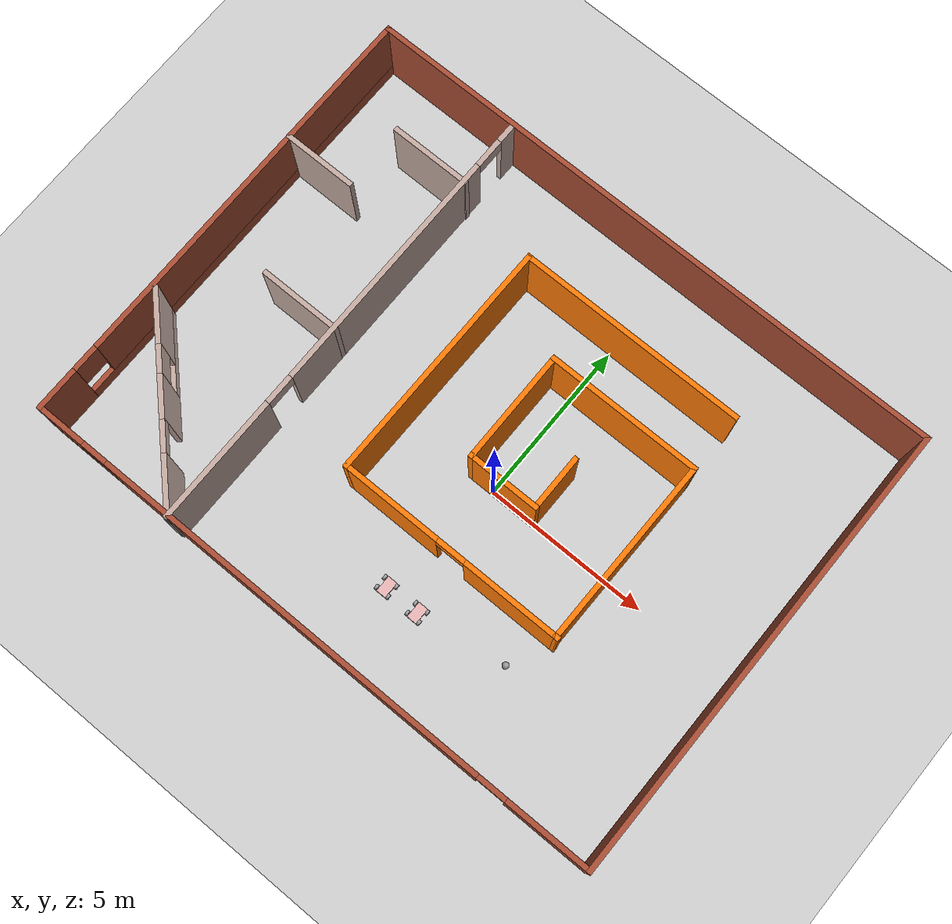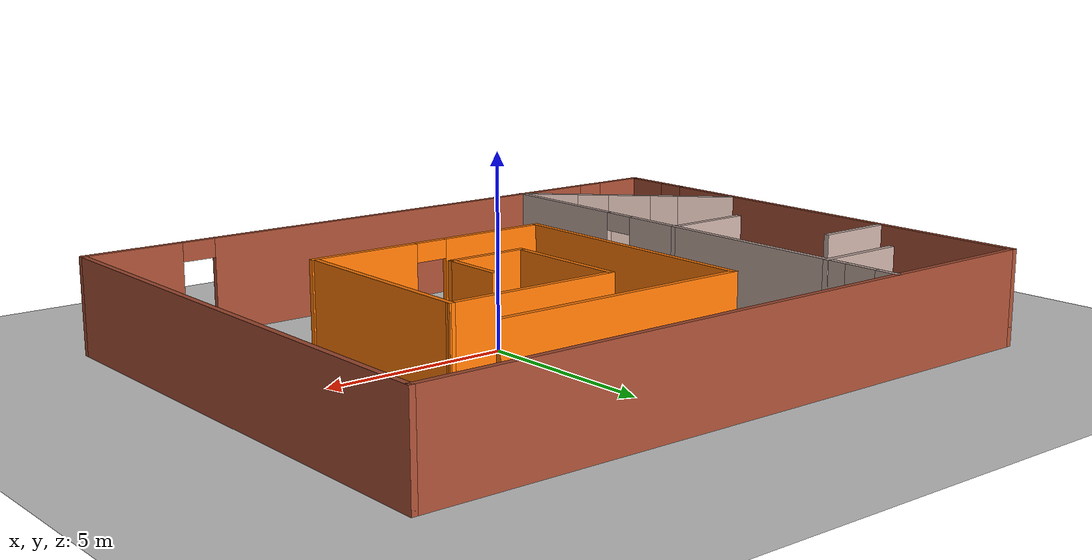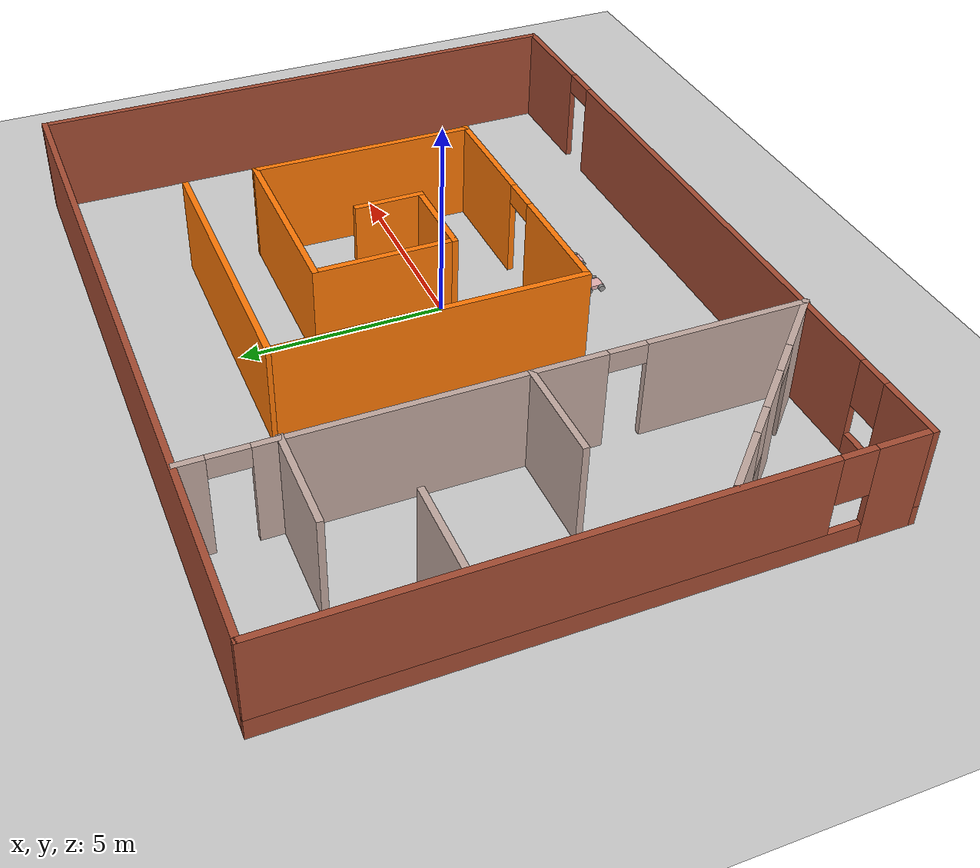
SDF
<sdf version="1.6">
 <world name="default">
  <plugin name="hello" filename="libhello.so"/>
  <light name="sun" type="directional">
   <pose>0 0 10 0 -0 0</pose>
   <diffuse>0.8 0.8 0.8 1</diffuse>
   <specular>0.2 0.2 0.2 1</specular>
   <attenuation>
    <range>1000</range>
    <constant>0.9</constant>
    <linear>0.01</linear>
    <quadratic>0.001</quadratic>
   </attenuation>
   <direction>-0.5 0.1 -0.9</direction>
  </light>
  <model name="ground_plane">
   <static>1</static>
   <link name="link">
    <collision name="collision">
     <geometry><plane><normal>0 0 1</normal><size>100 100</size></plane></geometry>
     <surface><friction><ode><mu>100</mu><mu2>50</mu2></ode></friction></surface>
    </collision>
    <visual name="visual">
     <cast_shadows>0</cast_shadows>
     <geometry><plane><normal>0 0 1</normal><size>100 100</size></plane></geometry>
     <material>
      <script><uri>file://media/materials/scripts/gazebo.material</uri><name>Gazebo/Grey</name></script>
     </material>
    </visual>
   </link>
  </model>
  <gravity>0 0 -9.8</gravity>
  <magnetic_field>6e-06 2.3e-05 -4.2e-05</magnetic_field>
  <atmosphere type="adiabatic"/>
  <physics name="default_physics" default="0" type="ode">
   <max_step_size>0.001</max_step_size>
   <real_time_factor>1</real_time_factor>
   <real_time_update_rate>1000</real_time_update_rate>
  </physics>
  <scene><ambient>0.4 0.4 0.4 1</ambient><background>0.7 0.7 0.7 1</background><shadows>1</shadows></scene>
  <spherical_coordinates>
   <surface_model>EARTH_WGS84</surface_model>
   <latitude_deg>0</latitude_deg>
   <longitude_deg>0</longitude_deg>
   <elevation>0</elevation>
   <heading_deg>0</heading_deg>
  </spherical_coordinates>
  <model name="SmartCart">
   <link name="link_0">
    <pose>-0.007382 0.000764 -2e-06 0 -0 0</pose>
    <inertial>
     <mass>0.4</mass>
     <inertia>
      <ixx>0.166667</ixx>
      <ixy>0</ixy>
      <ixz>0</ixz>
      <iyy>0.166667</iyy>
      <iyz>0</iyz>
      <izz>0.166667</izz>
     </inertia>
    </inertial>
    <visual name="visual">
     <geometry><box><size>0.3 0.5 0.1</size></box></geometry>
     <material>
      <lighting>1</lighting>
      <script><uri>file://media/materials/scripts/gazebo.material</uri><name>Gazebo/Grey</name></script>
      <shader type="pixel"><normal_map>__default__</normal_map></shader>
      <ambient>0.9 0.3 0.3 1</ambient>
      <diffuse>0.9 0.7 0.7 1</diffuse>
      <specular>0.01 0.01 0.01 1</specular>
      <emissive>0 0 0 1</emissive>
     </material>
    </visual>
    <collision name="collision">
     <geometry><box><size>0.3 0.5 0.1</size></box></geometry>
     <surface>
      <friction>
       <ode><mu>1</mu><mu2>1</mu2><fdir1>0 0 0</fdir1><slip1>0</slip1><slip2>0</slip2></ode>
       <torsional>
        <coefficient>1</coefficient>
        <patch_radius>0</patch_radius>
        <surface_radius>0</surface_radius>
        <use_patch_radius>1</use_patch_radius>
        <ode><slip>0</slip></ode>
       </torsional>
      </friction>
      <bounce><restitution_coefficient>0</restitution_coefficient><threshold>1e+06</threshold></bounce>
      <contact>
       <collide_without_contact>0</collide_without_contact>
       <collide_without_contact_bitmask>1</collide_without_contact_bitmask>
       <collide_bitmask>1</collide_bitmask>
       <ode>
        <soft_cfm>0</soft_cfm>
        <soft_erp>0.2</soft_erp>
        <kp>1e+13</kp>
        <kd>1</kd>
        <max_vel>0.01</max_vel>
        <min_depth>0</min_depth>
       </ode>
       <bullet>
        <split_impulse>1</split_impulse>
        <split_impulse_penetration_threshold>-0.01</split_impulse_penetration_threshold>
        <soft_cfm>0</soft_cfm>
        <soft_erp>0.2</soft_erp>
        <kp>1e+13</kp>
        <kd>1</kd>
       </bullet>
      </contact>
     </surface>
    </collision>
   </link>
   <link name="link_1">
    <pose>-0.217826 -0.169236 -0 -3.14159 1.57079 -3.14159</pose>
    <inertial>
     <mass>0.1</mass>
     <inertia><ixx>0.145833</ixx><ixy>0</ixy><ixz>0</ixz><iyy>0.145833</iyy><iyz>0</iyz><izz>0.125</izz></inertia>
    </inertial>
    <visual name="visual">
     <geometry><cylinder><radius>0.08</radius><length>0.08</length></cylinder></geometry>
     <material>
      <lighting>1</lighting>
      <script><uri>file://media/materials/scripts/gazebo.material</uri><name>Gazebo/Grey</name></script>
      <shader type="pixel"><normal_map>__default__</normal_map></shader>
      <ambient>0.3 0.3 0.3 1</ambient>
      <diffuse>0.7 0.7 0.7 1</diffuse>
      <specular>0.01 0.01 0.01 1</specular>
      <emissive>0 0 0 1</emissive>
     </material>
    </visual>
    <collision name="collision">
     <geometry><cylinder><radius>0.08</radius><length>0.08</length></cylinder></geometry>
     <surface>
      <friction>
       <ode><mu>1</mu><mu2>1</mu2><fdir1>0 0 0</fdir1><slip1>0</slip1><slip2>0</slip2></ode>
       <torsional>
        <coefficient>1</coefficient>
        <patch_radius>0</patch_radius>
        <surface_radius>0</surface_radius>
        <use_patch_radius>1</use_patch_radius>
        <ode><slip>0</slip></ode>
       </torsional>
      </friction>
      <bounce><restitution_coefficient>0</restitution_coefficient><threshold>1e+06</threshold></bounce>
      <contact>
       <collide_without_contact>0</collide_without_contact>
       <collide_without_contact_bitmask>1</collide_without_contact_bitmask>
       <collide_bitmask>1</collide_bitmask>
       <ode>
        <soft_cfm>0</soft_cfm>
        <soft_erp>0.2</soft_erp>
        <kp>1e+13</kp>
        <kd>1</kd>
        <max_vel>0.01</max_vel>
        <min_depth>0</min_depth>
       </ode>
       <bullet>
        <split_impulse>1</split_impulse>
        <split_impulse_penetration_threshold>-0.01</split_impulse_penetration_threshold>
        <soft_cfm>0</soft_cfm>
        <soft_erp>0.2</soft_erp>
        <kp>1e+13</kp>
        <kd>1</kd>
       </bullet>
      </contact>
     </surface>
    </collision>
   </link>
   <link name="link_1_clone">
    <pose>-0.217826 0.170764 -0 -3.14159 1.57079 -3.14159</pose>
    <inertial>
     <mass>0.1</mass>
     <inertia><ixx>0.145833</ixx><ixy>0</ixy><ixz>0</ixz><iyy>0.145833</iyy><iyz>0</iyz><izz>0.125</izz></inertia>
    </inertial>
    <visual name="visual">
     <geometry><cylinder><radius>0.08</radius><length>0.08</length></cylinder></geometry>
     <material>
      <lighting>1</lighting>
      <script><uri>file://media/materials/scripts/gazebo.material</uri><name>Gazebo/Grey</name></script>
      <shader type="pixel"><normal_map>__default__</normal_map></shader>
      <ambient>0.3 0.3 0.3 1</ambient>
      <diffuse>0.7 0.7 0.7 1</diffuse>
      <specular>0.01 0.01 0.01 1</specular>
      <emissive>0 0 0 1</emissive>
     </material>
    </visual>
    <collision name="collision">
     <geometry><cylinder><radius>0.08</radius><length>0.08</length></cylinder></geometry>
     <surface>
      <friction>
       <ode><mu>1</mu><mu2>1</mu2><fdir1>0 0 0</fdir1><slip1>0</slip1><slip2>0</slip2></ode>
       <torsional>
        <coefficient>1</coefficient>
        <patch_radius>0</patch_radius>
        <surface_radius>0</surface_radius>
        <use_patch_radius>1</use_patch_radius>
        <ode><slip>0</slip></ode>
       </torsional>
      </friction>
      <bounce><restitution_coefficient>0</restitution_coefficient><threshold>1e+06</threshold></bounce>
      <contact>
       <collide_without_contact>0</collide_without_contact>
       <collide_without_contact_bitmask>1</collide_without_contact_bitmask>
       <collide_bitmask>1</collide_bitmask>
       <ode>
        <soft_cfm>0</soft_cfm>
        <soft_erp>0.2</soft_erp>
        <kp>1e+13</kp>
        <kd>1</kd>
        <max_vel>0.01</max_vel>
        <min_depth>0</min_depth>
       </ode>
       <bullet>
        <split_impulse>1</split_impulse>
        <split_impulse_penetration_threshold>-0.01</split_impulse_penetration_threshold>
        <soft_cfm>0</soft_cfm>
        <soft_erp>0.2</soft_erp>
        <kp>1e+13</kp>
        <kd>1</kd>
       </bullet>
      </contact>
     </surface>
    </collision>
   </link>
   <link name="link_1_clone_0">
    <pose>0.182618 -0.169236 0 -3.14159 1.57079 -3.14159</pose>
    <inertial>
     <mass>0.1</mass>
     <inertia><ixx>0.145833</ixx><ixy>0</ixy><ixz>0</ixz><iyy>0.145833</iyy><iyz>0</iyz><izz>0.125</izz></inertia>
    </inertial>
    <visual name="visual">
     <geometry><cylinder><radius>0.08</radius><length>0.08</length></cylinder></geometry>
     <material>
      <lighting>1</lighting>
      <script><uri>file://media/materials/scripts/gazebo.material</uri><name>Gazebo/Grey</name></script>
      <shader type="pixel"><normal_map>__default__</normal_map></shader>
      <ambient>0.3 0.3 0.3 1</ambient>
      <diffuse>0.7 0.7 0.7 1</diffuse>
      <specular>0.01 0.01 0.01 1</specular>
      <emissive>0 0 0 1</emissive>
     </material>
    </visual>
    <collision name="collision">
     <geometry><cylinder><radius>0.08</radius><length>0.08</length></cylinder></geometry>
     <surface>
      <friction>
       <ode><mu>1</mu><mu2>1</mu2><fdir1>0 0 0</fdir1><slip1>0</slip1><slip2>0</slip2></ode>
       <torsional>
        <coefficient>1</coefficient>
        <patch_radius>0</patch_radius>
        <surface_radius>0</surface_radius>
        <use_patch_radius>1</use_patch_radius>
        <ode><slip>0</slip></ode>
       </torsional>
      </friction>
      <bounce><restitution_coefficient>0</restitution_coefficient><threshold>1e+06</threshold></bounce>
      <contact>
       <collide_without_contact>0</collide_without_contact>
       <collide_without_contact_bitmask>1</collide_without_contact_bitmask>
       <collide_bitmask>1</collide_bitmask>
       <ode>
        <soft_cfm>0</soft_cfm>
        <soft_erp>0.2</soft_erp>
        <kp>1e+13</kp>
        <kd>1</kd>
        <max_vel>0.01</max_vel>
        <min_depth>0</min_depth>
       </ode>
       <bullet>
        <split_impulse>1</split_impulse>
        <split_impulse_penetration_threshold>-0.01</split_impulse_penetration_threshold>
        <soft_cfm>0</soft_cfm>
        <soft_erp>0.2</soft_erp>
        <kp>1e+13</kp>
        <kd>1</kd>
       </bullet>
      </contact>
     </surface>
    </collision>
   </link>
   <link name="link_1_clone_1">
    <pose>0.182618 0.170764 0 -3.14159 1.57079 -3.14159</pose>
    <inertial>
     <mass>0.1</mass>
     <inertia><ixx>0.145833</ixx><ixy>0</ixy><ixz>0</ixz><iyy>0.145833</iyy><iyz>0</iyz><izz>0.125</izz></inertia>
    </inertial>
    <visual name="visual">
     <geometry><cylinder><radius>0.08</radius><length>0.08</length></cylinder></geometry>
     <material>
      <lighting>1</lighting>
      <script><uri>file://media/materials/scripts/gazebo.material</uri><name>Gazebo/Grey</name></script>
      <shader type="pixel"><normal_map>__default__</normal_map></shader>
      <ambient>0.3 0.3 0.3 1</ambient>
      <diffuse>0.7 0.7 0.7 1</diffuse>
      <specular>0.01 0.01 0.01 1</specular>
      <emissive>0 0 0 1</emissive>
     </material>
    </visual>
    <collision name="collision">
     <geometry><cylinder><radius>0.08</radius><length>0.08</length></cylinder></geometry>
     <surface>
      <friction>
       <ode><mu>1</mu><mu2>1</mu2><fdir1>0 0 0</fdir1><slip1>0</slip1><slip2>0</slip2></ode>
       <torsional>
        <coefficient>1</coefficient>
        <patch_radius>0</patch_radius>
        <surface_radius>0</surface_radius>
        <use_patch_radius>1</use_patch_radius>
        <ode><slip>0</slip></ode>
       </torsional>
      </friction>
      <bounce><restitution_coefficient>0</restitution_coefficient><threshold>1e+06</threshold></bounce>
      <contact>
       <collide_without_contact>0</collide_without_contact>
       <collide_without_contact_bitmask>1</collide_without_contact_bitmask>
       <collide_bitmask>1</collide_bitmask>
       <ode>
        <soft_cfm>0</soft_cfm>
        <soft_erp>0.2</soft_erp>
        <kp>1e+13</kp>
        <kd>1</kd>
        <max_vel>0.01</max_vel>
        <min_depth>0</min_depth>
       </ode>
       <bullet>
        <split_impulse>1</split_impulse>
        <split_impulse_penetration_threshold>-0.01</split_impulse_penetration_threshold>
        <soft_cfm>0</soft_cfm>
        <soft_erp>0.2</soft_erp>
        <kp>1e+13</kp>
        <kd>1</kd>
       </bullet>
      </contact>
     </surface>
    </collision>
   </link>
   <joint name="link_0_JOINT_1" type="revolute">
    <parent>link_0</parent>
    <child>link_1_clone_0</child>
    <axis>
     <xyz>0 0 -1</xyz>
     <use_parent_model_frame>0</use_parent_model_frame>
     <limit>
      <lower>-1.79769e+308</lower>
      <upper>1.79769e+308</upper>
      <effort>-1</effort>
      <velocity>-1</velocity>
     </limit>
     <dynamics>
      <spring_reference>0</spring_reference>
      <spring_stiffness>0</spring_stiffness>
      <damping>0</damping>
      <friction>0</friction>
     </dynamics>
    </axis>
    <physics>
     <ode><limit><cfm>0</cfm><erp>0.2</erp></limit><suspension><cfm>0</cfm><erp>0.2</erp></suspension></ode>
    </physics>
   </joint>
   <joint name="link_0_JOINT_2" type="revolute">
    <parent>link_0</parent>
    <child>link_1</child>
    <axis>
     <xyz>0 0 1</xyz>
     <use_parent_model_frame>0</use_parent_model_frame>
     <limit>
      <lower>-1.79769e+308</lower>
      <upper>1.79769e+308</upper>
      <effort>-1</effort>
      <velocity>-1</velocity>
     </limit>
     <dynamics>
      <spring_reference>0</spring_reference>
      <spring_stiffness>0</spring_stiffness>
      <damping>0</damping>
      <friction>0</friction>
     </dynamics>
    </axis>
    <physics>
     <ode><limit><cfm>0</cfm><erp>0.2</erp></limit><suspension><cfm>0</cfm><erp>0.2</erp></suspension></ode>
    </physics>
   </joint>
   <joint name="link_0_JOINT_3" type="revolute">
    <parent>link_0</parent>
    <child>link_1_clone_1</child>
    <axis>
     <xyz>0 0 -1</xyz>
     <use_parent_model_frame>0</use_parent_model_frame>
     <limit>
      <lower>-1.79769e+308</lower>
      <upper>1.79769e+308</upper>
      <effort>-1</effort>
      <velocity>-1</velocity>
     </limit>
     <dynamics>
      <spring_reference>0</spring_reference>
      <spring_stiffness>0</spring_stiffness>
      <damping>0</damping>
      <friction>0</friction>
     </dynamics>
    </axis>
    <physics>
     <ode><limit><cfm>0</cfm><erp>0.2</erp></limit><suspension><cfm>0</cfm><erp>0.2</erp></suspension></ode>
    </physics>
   </joint>
   <joint name="link_0_JOINT_4" type="revolute">
    <parent>link_0</parent>
    <child>link_1_clone</child>
    <axis>
     <xyz>0 0 1</xyz>
     <use_parent_model_frame>0</use_parent_model_frame>
     <limit>
      <lower>-1.79769e+308</lower>
      <upper>1.79769e+308</upper>
      <effort>-1</effort>
      <velocity>-1</velocity>
     </limit>
     <dynamics>
      <spring_reference>0</spring_reference>
      <spring_stiffness>0</spring_stiffness>
      <damping>0</damping>
      <friction>0</friction>
     </dynamics>
    </axis>
    <physics>
     <ode><limit><cfm>0</cfm><erp>0.2</erp></limit><suspension><cfm>0</cfm><erp>0.2</erp></suspension></ode>
    </physics>
   </joint>
   <static>0</static>
   <pose>0.540387 -3.80011 0.08 1e-06 -3e-06 0.000656</pose>
  </model>
  <model name="building">
   <pose>-1.05341 0.7973 0 0 -0 0</pose>
   <link name="Wall_0">
    <collision name="Wall_0_Collision">
     <geometry><box><size>18.25 0.15 2.5</size></box></geometry>
     <pose>0 0 1.25 0 -0 0</pose>
    </collision>
    <visual name="Wall_0_Visual">
     <pose>0 0 1.25 0 -0 0</pose>
     <geometry><box><size>18.25 0.15 2.5</size></box></geometry>
     <material>
      <script><uri>file://media/materials/scripts/gazebo.material</uri><name>Gazebo/Bricks</name></script>
      <ambient>1 1 1 1</ambient>
     </material>
     <meta><layer>0</layer></meta>
    </visual>
    <pose>0 6.95971 0 0 -0 0</pose>
   </link>
   <link name="Wall_1">
    <collision name="Wall_1_Collision">
     <geometry><box><size>14 0.15 2.5</size></box></geometry>
     <pose>0 0 1.25 0 -0 0</pose>
    </collision>
    <visual name="Wall_1_Visual">
     <pose>0 0 1.25 0 -0 0</pose>
     <geometry><box><size>14 0.15 2.5</size></box></geometry>
     <material>
      <script><uri>file://media/materials/scripts/gazebo.material</uri><name>Gazebo/Bricks</name></script>
      <ambient>1 1 1 1</ambient>
     </material>
     <meta><layer>0</layer></meta>
    </visual>
    <pose>9.05 0.034713 0 0 0 -1.5708</pose>
   </link>
   <link name="Wall_10">
    <pose>1.49893 -3.03836 0 0 -0 3.14159</pose>
    <visual name="Wall_10_Visual_0">
     <pose>-1.97697 0 1.25 0 -0 0</pose>
     <geometry><box><size>3.05744 0.15 2.5</size></box></geometry>
     <material>
      <script><uri>file://media/materials/scripts/gazebo.material</uri><name>Gazebo/Grey</name></script>
      <ambient>0.996078 0.47451 0.0196078 1</ambient>
     </material>
     <meta><layer>0</layer></meta>
    </visual>
    <collision name="Wall_10_Collision_0">
     <geometry><box><size>3.05744 0.15 2.5</size></box></geometry>
     <pose>-1.97697 0 1.25 0 -0 0</pose>
    </collision>
    <visual name="Wall_10_Visual_1">
     <pose>1.97872 0 1.25 0 -0 0</pose>
     <geometry><box><size>3.05395 0.15 2.5</size></box></geometry>
     <material>
      <script><uri>file://media/materials/scripts/gazebo.material</uri><name>Gazebo/Grey</name></script>
      <ambient>0.996078 0.47451 0.0196078 1</ambient>
     </material>
     <meta><layer>0</layer></meta>
    </visual>
    <collision name="Wall_10_Collision_1">
     <geometry><box><size>3.05395 0.15 2.5</size></box></geometry>
     <pose>1.97872 0 1.25 0 -0 0</pose>
    </collision>
    <visual name="Wall_10_Visual_2">
     <pose>0.001747 0 2.25 0 -0 0</pose>
     <geometry><box><size>0.9 0.15 0.5</size></box></geometry>
     <material>
      <script><uri>file://media/materials/scripts/gazebo.material</uri><name>Gazebo/Grey</name></script>
      <ambient>0.996078 0.47451 0.0196078 1</ambient>
     </material>
     <meta><layer>0</layer></meta>
    </visual>
    <collision name="Wall_10_Collision_2">
     <geometry><box><size>0.9 0.15 0.5</size></box></geometry>
     <pose>0.001747 0 2.25 0 -0 0</pose>
    </collision>
   </link>
   <link name="Wall_11">
    <collision name="Wall_11_Collision">
     <geometry><box><size>7.43819 0.15 2.5</size></box></geometry>
     <pose>0 0 1.25 0 -0 0</pose>
    </collision>
    <visual name="Wall_11_Visual">
     <pose>0 0 1.25 0 -0 0</pose>
     <geometry><box><size>7.43819 0.15 2.5</size></box></geometry>
     <material>
      <script><uri>file://media/materials/scripts/gazebo.material</uri><name>Gazebo/Grey</name></script>
      <ambient>0.996078 0.47451 0.0196078 1</ambient>
     </material>
     <meta><layer>0</layer></meta>
    </visual>
    <pose>-1.95199 0.605517 0 0 -0 1.56524</pose>
   </link>
   <link name="Wall_12">
    <collision name="Wall_12_Collision">
     <geometry><box><size>7 0.15 2.5</size></box></geometry>
     <pose>0 0 1.25 0 -0 0</pose>
    </collision>
    <visual name="Wall_12_Visual">
     <pose>0 0 1.25 0 -0 0</pose>
     <geometry><box><size>7 0.15 2.5</size></box></geometry>
     <material>
      <script><uri>file://media/materials/scripts/gazebo.material</uri><name>Gazebo/Grey</name></script>
      <ambient>0.996078 0.47451 0.0196078 1</ambient>
     </material>
     <meta><layer>0</layer></meta>
    </visual>
    <pose>1.49324 4.28984 0 0 -0 0</pose>
   </link>
   <link name="Wall_14">
    <pose>-4.62086 -0.003648 0 0 0 -1.5708</pose>
    <visual name="Wall_14_Visual_0">
     <pose>-6.66747 0 1.25 0 -0 0</pose>
     <geometry><box><size>0.665068 0.15 2.5</size></box></geometry>
     <material>
      <script><uri>file://media/materials/scripts/gazebo.material</uri><name>Gazebo/Grey</name></script>
      <ambient>0.760784 0.662745 0.627451 1</ambient>
     </material>
     <meta><layer>0</layer></meta>
    </visual>
    <collision name="Wall_14_Collision_0">
     <geometry><box><size>0.665068 0.15 2.5</size></box></geometry>
     <pose>-6.66747 0 1.25 0 -0 0</pose>
    </collision>
    <visual name="Wall_14_Visual_1">
     <pose>-1.63289 0 1.25 0 -0 0</pose>
     <geometry><box><size>7.60408 0.15 2.5</size></box></geometry>
     <material>
      <script><uri>file://media/materials/scripts/gazebo.material</uri><name>Gazebo/Grey</name></script>
      <ambient>0.760784 0.662745 0.627451 1</ambient>
     </material>
     <meta><layer>0</layer></meta>
    </visual>
    <collision name="Wall_14_Collision_1">
     <geometry><box><size>7.60408 0.15 2.5</size></box></geometry>
     <pose>-1.63289 0 1.25 0 -0 0</pose>
    </collision>
    <visual name="Wall_14_Visual_2">
     <pose>5.03458 0 1.25 0 -0 0</pose>
     <geometry><box><size>3.93085 0.15 2.5</size></box></geometry>
     <material>
      <script><uri>file://media/materials/scripts/gazebo.material</uri><name>Gazebo/Grey</name></script>
      <ambient>0.760784 0.662745 0.627451 1</ambient>
     </material>
     <meta><layer>0</layer></meta>
    </visual>
    <collision name="Wall_14_Collision_2">
     <geometry><box><size>3.93085 0.15 2.5</size></box></geometry>
     <pose>5.03458 0 1.25 0 -0 0</pose>
    </collision>
    <visual name="Wall_14_Visual_3">
     <pose>-5.88493 0 2.25 0 -0 0</pose>
     <geometry><box><size>0.9 0.15 0.5</size></box></geometry>
     <material>
      <script><uri>file://media/materials/scripts/gazebo.material</uri><name>Gazebo/Grey</name></script>
      <ambient>0.760784 0.662745 0.627451 1</ambient>
     </material>
     <meta><layer>0</layer></meta>
    </visual>
    <collision name="Wall_14_Collision_3">
     <geometry><box><size>0.9 0.15 0.5</size></box></geometry>
     <pose>-5.88493 0 2.25 0 -0 0</pose>
    </collision>
    <visual name="Wall_14_Visual_4">
     <pose>2.61915 0 2.25 0 -0 0</pose>
     <geometry><box><size>0.9 0.15 0.5</size></box></geometry>
     <material>
      <script><uri>file://media/materials/scripts/gazebo.material</uri><name>Gazebo/Grey</name></script>
      <ambient>0.760784 0.662745 0.627451 1</ambient>
     </material>
     <meta><layer>0</layer></meta>
    </visual>
    <collision name="Wall_14_Collision_4">
     <geometry><box><size>0.9 0.15 0.5</size></box></geometry>
     <pose>2.61915 0 2.25 0 -0 0</pose>
    </collision>
   </link>
   <link name="Wall_15">
    <pose>-6.77753 -4.77197 0 0 -0 2.35619</pose>
    <visual name="Wall_15_Visual_0">
     <pose>-2.26602 0 1.25 0 -0 0</pose>
     <geometry><box><size>1.71795 0.15 2.5</size></box></geometry>
     <material>
      <script><uri>file://media/materials/scripts/gazebo.material</uri><name>Gazebo/Grey</name></script>
      <ambient>0.760784 0.662745 0.627451 1</ambient>
     </material>
     <meta><layer>0</layer></meta>
    </visual>
    <collision name="Wall_15_Collision_0">
     <geometry><box><size>1.71795 0.15 2.5</size></box></geometry>
     <pose>-2.26602 0 1.25 0 -0 0</pose>
    </collision>
    <visual name="Wall_15_Visual_1">
     <pose>0.106217 0 1.25 0 -0 0</pose>
     <geometry><box><size>1.22653 0.15 2.5</size></box></geometry>
     <material>
      <script><uri>file://media/materials/scripts/gazebo.material</uri><name>Gazebo/Grey</name></script>
      <ambient>0.760784 0.662745 0.627451 1</ambient>
     </material>
     <meta><layer>0</layer></meta>
    </visual>
    <collision name="Wall_15_Collision_1">
     <geometry><box><size>1.22653 0.15 2.5</size></box></geometry>
     <pose>0.106217 0 1.25 0 -0 0</pose>
    </collision>
    <visual name="Wall_15_Visual_2">
     <pose>1.92224 0 0.25 0 -0 0</pose>
     <geometry><box><size>2.40552 0.15 0.5</size></box></geometry>
     <material>
      <script><uri>file://media/materials/scripts/gazebo.material</uri><name>Gazebo/Grey</name></script>
      <ambient>0.760784 0.662745 0.627451 1</ambient>
     </material>
     <meta><layer>0</layer></meta>
    </visual>
    <collision name="Wall_15_Collision_2">
     <geometry><box><size>2.40552 0.15 0.5</size></box></geometry>
     <pose>1.92224 0 0.25 0 -0 0</pose>
    </collision>
    <visual name="Wall_15_Visual_3">
     <pose>2.32224 0 1.5 0 -0 0</pose>
     <geometry><box><size>1.60552 0.15 2</size></box></geometry>
     <material>
      <script><uri>file://media/materials/scripts/gazebo.material</uri><name>Gazebo/Grey</name></script>
      <ambient>0.760784 0.662745 0.627451 1</ambient>
     </material>
     <meta><layer>0</layer></meta>
    </visual>
    <collision name="Wall_15_Collision_3">
     <geometry><box><size>1.60552 0.15 2</size></box></geometry>
     <pose>2.32224 0 1.5 0 -0 0</pose>
    </collision>
    <visual name="Wall_15_Visual_4">
     <pose>1.11948 0 1.9 0 -0 0</pose>
     <geometry><box><size>0.8 0.15 1.2</size></box></geometry>
     <material>
      <script><uri>file://media/materials/scripts/gazebo.material</uri><name>Gazebo/Grey</name></script>
      <ambient>0.760784 0.662745 0.627451 1</ambient>
     </material>
     <meta><layer>0</layer></meta>
    </visual>
    <collision name="Wall_15_Collision_4">
     <geometry><box><size>0.8 0.15 1.2</size></box></geometry>
     <pose>1.11948 0 1.9 0 -0 0</pose>
    </collision>
    <visual name="Wall_15_Visual_5">
     <pose>-0.95705 0 2.25 0 -0 0</pose>
     <geometry><box><size>0.9 0.15 0.5</size></box></geometry>
     <material>
      <script><uri>file://media/materials/scripts/gazebo.material</uri><name>Gazebo/Grey</name></script>
      <ambient>0.760784 0.662745 0.627451 1</ambient>
     </material>
     <meta><layer>0</layer></meta>
    </visual>
    <collision name="Wall_15_Collision_5">
     <geometry><box><size>0.9 0.15 0.5</size></box></geometry>
     <pose>-0.95705 0 2.25 0 -0 0</pose>
    </collision>
   </link>
   <link name="Wall_17">
    <collision name="Wall_17_Collision">
     <geometry><box><size>2.5 0.15 2.5</size></box></geometry>
     <pose>0 0 1.25 0 -0 0</pose>
    </collision>
    <visual name="Wall_17_Visual">
     <pose>0 0 1.25 0 -0 0</pose>
     <geometry><box><size>2.5 0.15 2.5</size></box></geometry>
     <material>
      <script><uri>file://media/materials/scripts/gazebo.material</uri><name>Gazebo/Grey</name></script>
      <ambient>0.760784 0.662745 0.627451 1</ambient>
     </material>
     <meta><layer>0</layer></meta>
    </visual>
    <pose>-5.79586 -0.450893 0 0 -0 3.14159</pose>
   </link>
   <link name="Wall_19">
    <collision name="Wall_19_Collision">
     <geometry><box><size>2.25 0.15 2.5</size></box></geometry>
     <pose>0 0 1.25 0 -0 0</pose>
    </collision>
    <visual name="Wall_19_Visual">
     <pose>0 0 1.25 0 -0 0</pose>
     <geometry><box><size>2.25 0.15 2.5</size></box></geometry>
     <material>
      <script><uri>file://media/materials/scripts/gazebo.material</uri><name>Gazebo/Grey</name></script>
      <ambient>0.760784 0.662745 0.627451 1</ambient>
     </material>
     <meta><layer>0</layer></meta>
    </visual>
    <pose>-7.97585 2.85285 0 0 -0 0</pose>
   </link>
   <link name="Wall_2">
    <pose>0 -6.89029 0 0 -0 3.14159</pose>
    <visual name="Wall_2_Visual_0">
     <pose>-7.78448 0 1.25 0 -0 0</pose>
     <geometry><box><size>2.68105 0.15 2.5</size></box></geometry>
     <material>
      <script><uri>file://media/materials/scripts/gazebo.material</uri><name>Gazebo/Bricks</name></script>
      <ambient>1 1 1 1</ambient>
     </material>
     <meta><layer>0</layer></meta>
    </visual>
    <collision name="Wall_2_Collision_0">
     <geometry><box><size>2.68105 0.15 2.5</size></box></geometry>
     <pose>-7.78448 0 1.25 0 -0 0</pose>
    </collision>
    <visual name="Wall_2_Visual_1">
     <pose>0.607948 0 1.25 0 -0 0</pose>
     <geometry><box><size>12.3038 0.15 2.5</size></box></geometry>
     <material>
      <script><uri>file://media/materials/scripts/gazebo.material</uri><name>Gazebo/Bricks</name></script>
      <ambient>1 1 1 1</ambient>
     </material>
     <meta><layer>0</layer></meta>
    </visual>
    <collision name="Wall_2_Collision_1">
     <geometry><box><size>12.3038 0.15 2.5</size></box></geometry>
     <pose>0.607948 0 1.25 0 -0 0</pose>
    </collision>
    <visual name="Wall_2_Visual_2">
     <pose>7.94242 0 0.25 0 -0 0</pose>
     <geometry><box><size>2.36515 0.15 0.5</size></box></geometry>
     <material>
      <script><uri>file://media/materials/scripts/gazebo.material</uri><name>Gazebo/Bricks</name></script>
      <ambient>1 1 1 1</ambient>
     </material>
     <meta><layer>0</layer></meta>
    </visual>
    <collision name="Wall_2_Collision_2">
     <geometry><box><size>2.36515 0.15 0.5</size></box></geometry>
     <pose>7.94242 0 0.25 0 -0 0</pose>
    </collision>
    <visual name="Wall_2_Visual_3">
     <pose>8.34242 0 1.5 0 -0 0</pose>
     <geometry><box><size>1.56515 0.15 2</size></box></geometry>
     <material>
      <script><uri>file://media/materials/scripts/gazebo.material</uri><name>Gazebo/Bricks</name></script>
      <ambient>1 1 1 1</ambient>
     </material>
     <meta><layer>0</layer></meta>
    </visual>
    <collision name="Wall_2_Collision_3">
     <geometry><box><size>1.56515 0.15 2</size></box></geometry>
     <pose>8.34242 0 1.5 0 -0 0</pose>
    </collision>
    <visual name="Wall_2_Visual_4">
     <pose>7.15985 0 1.9 0 -0 0</pose>
     <geometry><box><size>0.8 0.15 1.2</size></box></geometry>
     <material>
      <script><uri>file://media/materials/scripts/gazebo.material</uri><name>Gazebo/Bricks</name></script>
      <ambient>1 1 1 1</ambient>
     </material>
     <meta><layer>0</layer></meta>
    </visual>
    <collision name="Wall_2_Collision_4">
     <geometry><box><size>0.8 0.15 1.2</size></box></geometry>
     <pose>7.15985 0 1.9 0 -0 0</pose>
    </collision>
    <visual name="Wall_2_Visual_5">
     <pose>-5.99395 0 2.25 0 -0 0</pose>
     <geometry><box><size>0.9 0.15 0.5</size></box></geometry>
     <material>
      <script><uri>file://media/materials/scripts/gazebo.material</uri><name>Gazebo/Bricks</name></script>
      <ambient>1 1 1 1</ambient>
     </material>
     <meta><layer>0</layer></meta>
    </visual>
    <collision name="Wall_2_Collision_5">
     <geometry><box><size>0.9 0.15 0.5</size></box></geometry>
     <pose>-5.99395 0 2.25 0 -0 0</pose>
    </collision>
   </link>
   <link name="Wall_21">
    <collision name="Wall_21_Collision">
     <geometry><box><size>2.5 0.15 2.5</size></box></geometry>
     <pose>0 0 1.25 0 -0 0</pose>
    </collision>
    <visual name="Wall_21_Visual">
     <pose>0 0 1.25 0 -0 0</pose>
     <geometry><box><size>2.5 0.15 2.5</size></box></geometry>
     <material>
      <script><uri>file://media/materials/scripts/gazebo.material</uri><name>Gazebo/Grey</name></script>
      <ambient>0.760784 0.662745 0.627451 1</ambient>
     </material>
     <meta><layer>0</layer></meta>
    </visual>
    <pose>-5.76527 4.84122 0 0 -0 3.14159</pose>
   </link>
   <link name="Wall_3">
    <pose>-9.05 0.034713 0 0 -0 1.5708</pose>
    <visual name="Wall_3_Visual_0">
     <pose>-6.31355 0 1.25 0 -0 0</pose>
     <geometry><box><size>1.37291 0.15 2.5</size></box></geometry>
     <material>
      <script><uri>file://media/materials/scripts/gazebo.material</uri><name>Gazebo/Bricks</name></script>
      <ambient>1 1 1 1</ambient>
     </material>
     <meta><layer>0</layer></meta>
    </visual>
    <collision name="Wall_3_Collision_0">
     <geometry><box><size>1.37291 0.15 2.5</size></box></geometry>
     <pose>-6.31355 0 1.25 0 -0 0</pose>
    </collision>
    <visual name="Wall_3_Visual_1">
     <pose>0.686454 0 0.25 0 -0 0</pose>
     <geometry><box><size>12.6271 0.15 0.5</size></box></geometry>
     <material>
      <script><uri>file://media/materials/scripts/gazebo.material</uri><name>Gazebo/Bricks</name></script>
      <ambient>1 1 1 1</ambient>
     </material>
     <meta><layer>0</layer></meta>
    </visual>
    <collision name="Wall_3_Collision_1">
     <geometry><box><size>12.6271 0.15 0.5</size></box></geometry>
     <pose>0.686454 0 0.25 0 -0 0</pose>
    </collision>
    <visual name="Wall_3_Visual_2">
     <pose>1.08645 0 1.5 0 -0 0</pose>
     <geometry><box><size>11.8271 0.15 2</size></box></geometry>
     <material>
      <script><uri>file://media/materials/scripts/gazebo.material</uri><name>Gazebo/Bricks</name></script>
      <ambient>1 1 1 1</ambient>
     </material>
     <meta><layer>0</layer></meta>
    </visual>
    <collision name="Wall_3_Collision_2">
     <geometry><box><size>11.8271 0.15 2</size></box></geometry>
     <pose>1.08645 0 1.5 0 -0 0</pose>
    </collision>
    <visual name="Wall_3_Visual_3">
     <pose>-5.22709 0 1.9 0 -0 0</pose>
     <geometry><box><size>0.8 0.15 1.2</size></box></geometry>
     <material>
      <script><uri>file://media/materials/scripts/gazebo.material</uri><name>Gazebo/Bricks</name></script>
      <ambient>1 1 1 1</ambient>
     </material>
     <meta><layer>0</layer></meta>
    </visual>
    <collision name="Wall_3_Collision_3">
     <geometry><box><size>0.8 0.15 1.2</size></box></geometry>
     <pose>-5.22709 0 1.9 0 -0 0</pose>
    </collision>
   </link>
   <link name="Wall_5">
    <collision name="Wall_5_Collision">
     <geometry><box><size>1.75 0.15 2.5</size></box></geometry>
     <pose>0 0 1.25 0 -0 0</pose>
    </collision>
    <visual name="Wall_5_Visual">
     <pose>0 0 1.25 0 -0 0</pose>
     <geometry><box><size>1.75 0.15 2.5</size></box></geometry>
     <material>
      <script><uri>file://media/materials/scripts/gazebo.material</uri><name>Gazebo/Grey</name></script>
      <ambient>0.996078 0.47451 0.0196078 1</ambient>
     </material>
     <meta><layer>0</layer></meta>
    </visual>
    <pose>2.42963 -0.010155 0 0 0 -1.5708</pose>
   </link>
   <link name="Wall_6">
    <collision name="Wall_6_Collision">
     <geometry><box><size>2.25 0.15 2.5</size></box></geometry>
     <pose>0 0 1.25 0 -0 0</pose>
    </collision>
    <visual name="Wall_6_Visual">
     <pose>0 0 1.25 0 -0 0</pose>
     <geometry><box><size>2.25 0.15 2.5</size></box></geometry>
     <material>
      <script><uri>file://media/materials/scripts/gazebo.material</uri><name>Gazebo/Grey</name></script>
      <ambient>0.996078 0.47451 0.0196078 1</ambient>
     </material>
     <meta><layer>0</layer></meta>
    </visual>
    <pose>1.37963 -0.810155 0 0 -0 3.14159</pose>
   </link>
   <link name="Wall_7">
    <collision name="Wall_7_Collision">
     <geometry><box><size>3.5 0.15 2.5</size></box></geometry>
     <pose>0 0 1.25 0 -0 0</pose>
    </collision>
    <visual name="Wall_7_Visual">
     <pose>0 0 1.25 0 -0 0</pose>
     <geometry><box><size>3.5 0.15 2.5</size></box></geometry>
     <material>
      <script><uri>file://media/materials/scripts/gazebo.material</uri><name>Gazebo/Grey</name></script>
      <ambient>0.996078 0.47451 0.0196078 1</ambient>
     </material>
     <meta><layer>0</layer></meta>
    </visual>
    <pose>0.329629 0.864845 0 0 -0 1.5708</pose>
   </link>
   <link name="Wall_8">
    <collision name="Wall_8_Collision">
     <geometry><box><size>4.75 0.15 2.5</size></box></geometry>
     <pose>0 0 1.25 0 -0 0</pose>
    </collision>
    <visual name="Wall_8_Visual">
     <pose>0 0 1.25 0 -0 0</pose>
     <geometry><box><size>4.75 0.15 2.5</size></box></geometry>
     <material>
      <script><uri>file://media/materials/scripts/gazebo.material</uri><name>Gazebo/Grey</name></script>
      <ambient>0.996078 0.47451 0.0196078 1</ambient>
     </material>
     <meta><layer>0</layer></meta>
    </visual>
    <pose>2.62963 2.53985 0 0 -0 0</pose>
   </link>
   <link name="Wall_9">
    <collision name="Wall_9_Collision">
     <geometry><box><size>5.72879 0.15 2.5</size></box></geometry>
     <pose>0 0 1.25 0 -0 0</pose>
    </collision>
    <visual name="Wall_9_Visual">
     <pose>0 0 1.25 0 -0 0</pose>
     <geometry><box><size>5.72879 0.15 2.5</size></box></geometry>
     <material>
      <script><uri>file://media/materials/scripts/gazebo.material</uri><name>Gazebo/Grey</name></script>
      <ambient>0.996078 0.47451 0.0196078 1</ambient>
     </material>
     <meta><layer>0</layer></meta>
    </visual>
    <pose>4.9094 -0.249256 0 0 0 -1.57805</pose>
   </link>
   <static>1</static>
  </model>
  <model name="SmartCart_0">
   <link name="link_0">
    <pose>-0.007382 0.000764 -2e-06 0 -0 0</pose>
    <inertial>
     <mass>0.4</mass>
     <inertia>
      <ixx>0.166667</ixx>
      <ixy>0</ixy>
      <ixz>0</ixz>
      <iyy>0.166667</iyy>
      <iyz>0</iyz>
      <izz>0.166667</izz>
     </inertia>
    </inertial>
    <visual name="visual">
     <geometry><box><size>0.3 0.5 0.1</size></box></geometry>
     <material>
      <lighting>1</lighting>
      <script><uri>file://media/materials/scripts/gazebo.material</uri><name>Gazebo/Grey</name></script>
      <shader type="pixel"><normal_map>__default__</normal_map></shader>
      <ambient>0.9 0.3 0.3 1</ambient>
      <diffuse>0.9 0.7 0.7 1</diffuse>
      <specular>0.01 0.01 0.01 1</specular>
      <emissive>0 0 0 1</emissive>
     </material>
    </visual>
    <collision name="collision">
     <geometry><box><size>0.3 0.5 0.1</size></box></geometry>
     <surface>
      <friction>
       <ode><mu>1</mu><mu2>1</mu2><fdir1>0 0 0</fdir1><slip1>0</slip1><slip2>0</slip2></ode>
       <torsional>
        <coefficient>1</coefficient>
        <patch_radius>0</patch_radius>
        <surface_radius>0</surface_radius>
        <use_patch_radius>1</use_patch_radius>
        <ode><slip>0</slip></ode>
       </torsional>
      </friction>
      <bounce><restitution_coefficient>0</restitution_coefficient><threshold>1e+06</threshold></bounce>
      <contact>
       <collide_without_contact>0</collide_without_contact>
       <collide_without_contact_bitmask>1</collide_without_contact_bitmask>
       <collide_bitmask>1</collide_bitmask>
       <ode>
        <soft_cfm>0</soft_cfm>
        <soft_erp>0.2</soft_erp>
        <kp>1e+13</kp>
        <kd>1</kd>
        <max_vel>0.01</max_vel>
        <min_depth>0</min_depth>
       </ode>
       <bullet>
        <split_impulse>1</split_impulse>
        <split_impulse_penetration_threshold>-0.01</split_impulse_penetration_threshold>
        <soft_cfm>0</soft_cfm>
        <soft_erp>0.2</soft_erp>
        <kp>1e+13</kp>
        <kd>1</kd>
       </bullet>
      </contact>
     </surface>
    </collision>
   </link>
   <link name="link_1">
    <pose>-0.217826 -0.169236 -0 -3.14159 1.57079 -3.14159</pose>
    <inertial>
     <mass>0.1</mass>
     <inertia><ixx>0.145833</ixx><ixy>0</ixy><ixz>0</ixz><iyy>0.145833</iyy><iyz>0</iyz><izz>0.125</izz></inertia>
    </inertial>
    <visual name="visual">
     <geometry><cylinder><radius>0.08</radius><length>0.08</length></cylinder></geometry>
     <material>
      <lighting>1</lighting>
      <script><uri>file://media/materials/scripts/gazebo.material</uri><name>Gazebo/Grey</name></script>
      <shader type="pixel"><normal_map>__default__</normal_map></shader>
      <ambient>0.3 0.3 0.3 1</ambient>
      <diffuse>0.7 0.7 0.7 1</diffuse>
      <specular>0.01 0.01 0.01 1</specular>
      <emissive>0 0 0 1</emissive>
     </material>
    </visual>
    <collision name="collision">
     <geometry><cylinder><radius>0.08</radius><length>0.08</length></cylinder></geometry>
     <surface>
      <friction>
       <ode><mu>1</mu><mu2>1</mu2><fdir1>0 0 0</fdir1><slip1>0</slip1><slip2>0</slip2></ode>
       <torsional>
        <coefficient>1</coefficient>
        <patch_radius>0</patch_radius>
        <surface_radius>0</surface_radius>
        <use_patch_radius>1</use_patch_radius>
        <ode><slip>0</slip></ode>
       </torsional>
      </friction>
      <bounce><restitution_coefficient>0</restitution_coefficient><threshold>1e+06</threshold></bounce>
      <contact>
       <collide_without_contact>0</collide_without_contact>
       <collide_without_contact_bitmask>1</collide_without_contact_bitmask>
       <collide_bitmask>1</collide_bitmask>
       <ode>
        <soft_cfm>0</soft_cfm>
        <soft_erp>0.2</soft_erp>
        <kp>1e+13</kp>
        <kd>1</kd>
        <max_vel>0.01</max_vel>
        <min_depth>0</min_depth>
       </ode>
       <bullet>
        <split_impulse>1</split_impulse>
        <split_impulse_penetration_threshold>-0.01</split_impulse_penetration_threshold>
        <soft_cfm>0</soft_cfm>
        <soft_erp>0.2</soft_erp>
        <kp>1e+13</kp>
        <kd>1</kd>
       </bullet>
      </contact>
     </surface>
    </collision>
   </link>
   <link name="link_1_clone">
    <pose>-0.217826 0.170764 -0 -3.14159 1.57079 -3.14159</pose>
    <inertial>
     <mass>0.1</mass>
     <inertia><ixx>0.145833</ixx><ixy>0</ixy><ixz>0</ixz><iyy>0.145833</iyy><iyz>0</iyz><izz>0.125</izz></inertia>
    </inertial>
    <visual name="visual">
     <geometry><cylinder><radius>0.08</radius><length>0.08</length></cylinder></geometry>
     <material>
      <lighting>1</lighting>
      <script><uri>file://media/materials/scripts/gazebo.material</uri><name>Gazebo/Grey</name></script>
      <shader type="pixel"><normal_map>__default__</normal_map></shader>
      <ambient>0.3 0.3 0.3 1</ambient>
      <diffuse>0.7 0.7 0.7 1</diffuse>
      <specular>0.01 0.01 0.01 1</specular>
      <emissive>0 0 0 1</emissive>
     </material>
    </visual>
    <collision name="collision">
     <geometry><cylinder><radius>0.08</radius><length>0.08</length></cylinder></geometry>
     <surface>
      <friction>
       <ode><mu>1</mu><mu2>1</mu2><fdir1>0 0 0</fdir1><slip1>0</slip1><slip2>0</slip2></ode>
       <torsional>
        <coefficient>1</coefficient>
        <patch_radius>0</patch_radius>
        <surface_radius>0</surface_radius>
        <use_patch_radius>1</use_patch_radius>
        <ode><slip>0</slip></ode>
       </torsional>
      </friction>
      <bounce><restitution_coefficient>0</restitution_coefficient><threshold>1e+06</threshold></bounce>
      <contact>
       <collide_without_contact>0</collide_without_contact>
       <collide_without_contact_bitmask>1</collide_without_contact_bitmask>
       <collide_bitmask>1</collide_bitmask>
       <ode>
        <soft_cfm>0</soft_cfm>
        <soft_erp>0.2</soft_erp>
        <kp>1e+13</kp>
        <kd>1</kd>
        <max_vel>0.01</max_vel>
        <min_depth>0</min_depth>
       </ode>
       <bullet>
        <split_impulse>1</split_impulse>
        <split_impulse_penetration_threshold>-0.01</split_impulse_penetration_threshold>
        <soft_cfm>0</soft_cfm>
        <soft_erp>0.2</soft_erp>
        <kp>1e+13</kp>
        <kd>1</kd>
       </bullet>
      </contact>
     </surface>
    </collision>
   </link>
   <link name="link_1_clone_0">
    <pose>0.182618 -0.169236 0 -3.14159 1.57079 -3.14159</pose>
    <inertial>
     <mass>0.1</mass>
     <inertia><ixx>0.145833</ixx><ixy>0</ixy><ixz>0</ixz><iyy>0.145833</iyy><iyz>0</iyz><izz>0.125</izz></inertia>
    </inertial>
    <visual name="visual">
     <geometry><cylinder><radius>0.08</radius><length>0.08</length></cylinder></geometry>
     <material>
      <lighting>1</lighting>
      <script><uri>file://media/materials/scripts/gazebo.material</uri><name>Gazebo/Grey</name></script>
      <shader type="pixel"><normal_map>__default__</normal_map></shader>
      <ambient>0.3 0.3 0.3 1</ambient>
      <diffuse>0.7 0.7 0.7 1</diffuse>
      <specular>0.01 0.01 0.01 1</specular>
      <emissive>0 0 0 1</emissive>
     </material>
    </visual>
    <collision name="collision">
     <geometry><cylinder><radius>0.08</radius><length>0.08</length></cylinder></geometry>
     <surface>
      <friction>
       <ode><mu>1</mu><mu2>1</mu2><fdir1>0 0 0</fdir1><slip1>0</slip1><slip2>0</slip2></ode>
       <torsional>
        <coefficient>1</coefficient>
        <patch_radius>0</patch_radius>
        <surface_radius>0</surface_radius>
        <use_patch_radius>1</use_patch_radius>
        <ode><slip>0</slip></ode>
       </torsional>
      </friction>
      <bounce><restitution_coefficient>0</restitution_coefficient><threshold>1e+06</threshold></bounce>
      <contact>
       <collide_without_contact>0</collide_without_contact>
       <collide_without_contact_bitmask>1</collide_without_contact_bitmask>
       <collide_bitmask>1</collide_bitmask>
       <ode>
        <soft_cfm>0</soft_cfm>
        <soft_erp>0.2</soft_erp>
        <kp>1e+13</kp>
        <kd>1</kd>
        <max_vel>0.01</max_vel>
        <min_depth>0</min_depth>
       </ode>
       <bullet>
        <split_impulse>1</split_impulse>
        <split_impulse_penetration_threshold>-0.01</split_impulse_penetration_threshold>
        <soft_cfm>0</soft_cfm>
        <soft_erp>0.2</soft_erp>
        <kp>1e+13</kp>
        <kd>1</kd>
       </bullet>
      </contact>
     </surface>
    </collision>
   </link>
   <link name="link_1_clone_1">
    <pose>0.182618 0.170764 0 -3.14159 1.57079 -3.14159</pose>
    <inertial>
     <mass>0.1</mass>
     <inertia><ixx>0.145833</ixx><ixy>0</ixy><ixz>0</ixz><iyy>0.145833</iyy><iyz>0</iyz><izz>0.125</izz></inertia>
    </inertial>
    <visual name="visual">
     <geometry><cylinder><radius>0.08</radius><length>0.08</length></cylinder></geometry>
     <material>
      <lighting>1</lighting>
      <script><uri>file://media/materials/scripts/gazebo.material</uri><name>Gazebo/Grey</name></script>
      <shader type="pixel"><normal_map>__default__</normal_map></shader>
      <ambient>0.3 0.3 0.3 1</ambient>
      <diffuse>0.7 0.7 0.7 1</diffuse>
      <specular>0.01 0.01 0.01 1</specular>
      <emissive>0 0 0 1</emissive>
     </material>
    </visual>
    <collision name="collision">
     <geometry><cylinder><radius>0.08</radius><length>0.08</length></cylinder></geometry>
     <surface>
      <friction>
       <ode><mu>1</mu><mu2>1</mu2><fdir1>0 0 0</fdir1><slip1>0</slip1><slip2>0</slip2></ode>
       <torsional>
        <coefficient>1</coefficient>
        <patch_radius>0</patch_radius>
        <surface_radius>0</surface_radius>
        <use_patch_radius>1</use_patch_radius>
        <ode><slip>0</slip></ode>
       </torsional>
      </friction>
      <bounce><restitution_coefficient>0</restitution_coefficient><threshold>1e+06</threshold></bounce>
      <contact>
       <collide_without_contact>0</collide_without_contact>
       <collide_without_contact_bitmask>1</collide_without_contact_bitmask>
       <collide_bitmask>1</collide_bitmask>
       <ode>
        <soft_cfm>0</soft_cfm>
        <soft_erp>0.2</soft_erp>
        <kp>1e+13</kp>
        <kd>1</kd>
        <max_vel>0.01</max_vel>
        <min_depth>0</min_depth>
       </ode>
       <bullet>
        <split_impulse>1</split_impulse>
        <split_impulse_penetration_threshold>-0.01</split_impulse_penetration_threshold>
        <soft_cfm>0</soft_cfm>
        <soft_erp>0.2</soft_erp>
        <kp>1e+13</kp>
        <kd>1</kd>
       </bullet>
      </contact>
     </surface>
    </collision>
   </link>
   <joint name="link_0_JOINT_1" type="revolute">
    <parent>link_0</parent>
    <child>link_1_clone_0</child>
    <axis>
     <xyz>0 0 -1</xyz>
     <use_parent_model_frame>0</use_parent_model_frame>
     <limit>
      <lower>-1.79769e+308</lower>
      <upper>1.79769e+308</upper>
      <effort>-1</effort>
      <velocity>-1</velocity>
     </limit>
     <dynamics>
      <spring_reference>0</spring_reference>
      <spring_stiffness>0</spring_stiffness>
      <damping>0</damping>
      <friction>0</friction>
     </dynamics>
    </axis>
    <physics>
     <ode><limit><cfm>0</cfm><erp>0.2</erp></limit><suspension><cfm>0</cfm><erp>0.2</erp></suspension></ode>
    </physics>
   </joint>
   <joint name="link_0_JOINT_2" type="revolute">
    <parent>link_0</parent>
    <child>link_1</child>
    <axis>
     <xyz>0 0 1</xyz>
     <use_parent_model_frame>0</use_parent_model_frame>
     <limit>
      <lower>-1.79769e+308</lower>
      <upper>1.79769e+308</upper>
      <effort>-1</effort>
      <velocity>-1</velocity>
     </limit>
     <dynamics>
      <spring_reference>0</spring_reference>
      <spring_stiffness>0</spring_stiffness>
      <damping>0</damping>
      <friction>0</friction>
     </dynamics>
    </axis>
    <physics>
     <ode><limit><cfm>0</cfm><erp>0.2</erp></limit><suspension><cfm>0</cfm><erp>0.2</erp></suspension></ode>
    </physics>
   </joint>
   <joint name="link_0_JOINT_3" type="revolute">
    <parent>link_0</parent>
    <child>link_1_clone_1</child>
    <axis>
     <xyz>0 0 -1</xyz>
     <use_parent_model_frame>0</use_parent_model_frame>
     <limit>
      <lower>-1.79769e+308</lower>
      <upper>1.79769e+308</upper>
      <effort>-1</effort>
      <velocity>-1</velocity>
     </limit>
     <dynamics>
      <spring_reference>0</spring_reference>
      <spring_stiffness>0</spring_stiffness>
      <damping>0</damping>
      <friction>0</friction>
     </dynamics>
    </axis>
    <physics>
     <ode><limit><cfm>0</cfm><erp>0.2</erp></limit><suspension><cfm>0</cfm><erp>0.2</erp></suspension></ode>
    </physics>
   </joint>
   <joint name="link_0_JOINT_4" type="revolute">
    <parent>link_0</parent>
    <child>link_1_clone</child>
    <axis>
     <xyz>0 0 1</xyz>
     <use_parent_model_frame>0</use_parent_model_frame>
     <limit>
      <lower>-1.79769e+308</lower>
      <upper>1.79769e+308</upper>
      <effort>-1</effort>
      <velocity>-1</velocity>
     </limit>
     <dynamics>
      <spring_reference>0</spring_reference>
      <spring_stiffness>0</spring_stiffness>
      <damping>0</damping>
      <friction>0</friction>
     </dynamics>
    </axis>
    <physics>
     <ode><limit><cfm>0</cfm><erp>0.2</erp></limit><suspension><cfm>0</cfm><erp>0.2</erp></suspension></ode>
    </physics>
   </joint>
   <static>0</static>
   <pose>-0.533022 -3.79006 0.079992 1e-06 -2e-06 0.000229</pose>
  </model>
  <model name="white_ball">
   <link name="link_0">
    <inertial>
     <mass>1</mass>
     <inertia><ixx>0.1</ixx><ixy>0</ixy><ixz>0</ixz><iyy>0.1</iyy><iyz>0</iyz><izz>0.1</izz></inertia>
    </inertial>
    <visual name="visual">
     <geometry><sphere><radius>0.1</radius></sphere></geometry>
     <material>
      <lighting>1</lighting>
      <script><uri>file://media/materials/scripts/gazebo.material</uri><name>Gazebo/Grey</name></script>
      <shader type="pixel"><normal_map>__default__</normal_map></shader>
      <ambient>1 1 1 1</ambient>
      <diffuse>1 1 1 1</diffuse>
      <specular>1 1 1 1</specular>
      <emissive>1 1 1 1</emissive>
     </material>
    </visual>
    <collision name="collision">
     <geometry><sphere><radius>0.1</radius></sphere></geometry>
     <surface>
      <friction>
       <ode><mu>1</mu><mu2>1</mu2><fdir1>0 0 0</fdir1><slip1>0</slip1><slip2>0</slip2></ode>
       <torsional>
        <coefficient>1</coefficient>
        <patch_radius>0</patch_radius>
        <surface_radius>0</surface_radius>
        <use_patch_radius>1</use_patch_radius>
        <ode><slip>0</slip></ode>
       </torsional>
      </friction>
      <bounce><restitution_coefficient>0</restitution_coefficient><threshold>1e+06</threshold></bounce>
      <contact>
       <collide_without_contact>0</collide_without_contact>
       <collide_without_contact_bitmask>1</collide_without_contact_bitmask>
       <collide_bitmask>1</collide_bitmask>
       <ode>
        <soft_cfm>0</soft_cfm>
        <soft_erp>0.2</soft_erp>
        <kp>1e+13</kp>
        <kd>1</kd>
        <max_vel>0.01</max_vel>
        <min_depth>0</min_depth>
       </ode>
       <bullet>
        <split_impulse>1</split_impulse>
        <split_impulse_penetration_threshold>-0.01</split_impulse_penetration_threshold>
        <soft_cfm>0</soft_cfm>
        <soft_erp>0.2</soft_erp>
        <kp>1e+13</kp>
        <kd>1</kd>
       </bullet>
      </contact>
     </surface>
    </collision>
   </link>
   <static>0</static>
   <pose>3.19678 -3.38752 0.1 0 -0 0</pose>
  </model>
 </world>
</sdf>
